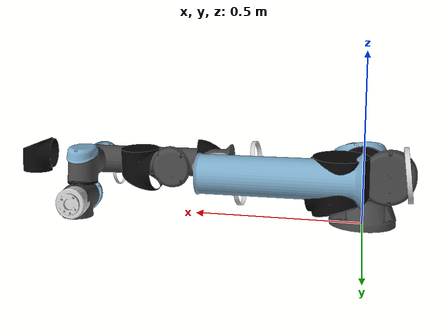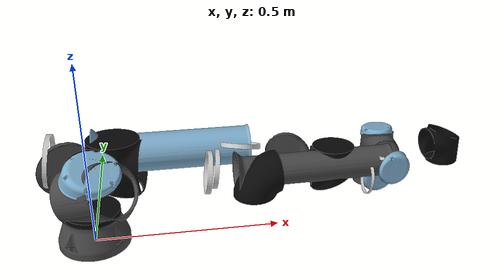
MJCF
<?xml version="1.0" ?>
<mujoco model="ur5e">
	<compiler meshdir="ur5e/meshes" texturedir="ur5e/textures" angle="radian" autolimits="true" balanceinertia="true" boundmass="0.000001" boundinertia="0.000001"/>
	<default>
		<default class="visual">
			<geom contype="0" conaffinity="0"/>
		</default>
		<default class="collision">
			<geom rgba="1.0 0.0 0.0 0.0"/>
		</default>
	</default>
	<asset>
		<mesh name="base_0" file="stl/base_0.stl" scale="1.0 1.0 1.0"/>
		<mesh name="base_1" file="stl/base_1.stl" scale="1.0 1.0 1.0"/>
		<mesh name="shoulder_0" file="stl/shoulder_0.stl" scale="1.0 1.0 1.0"/>
		<mesh name="shoulder_1" file="stl/shoulder_1.stl" scale="1.0 1.0 1.0"/>
		<mesh name="shoulder_2" file="stl/shoulder_2.stl" scale="1.0 1.0 1.0"/>
		<mesh name="upperarm_0" file="stl/upperarm_0.stl" scale="1.0 1.0 1.0"/>
		<mesh name="upperarm_1" file="stl/upperarm_1.stl" scale="1.0 1.0 1.0"/>
		<mesh name="upperarm_2" file="stl/upperarm_2.stl" scale="1.0 1.0 1.0"/>
		<mesh name="upperarm_3" file="stl/upperarm_3.stl" scale="1.0 1.0 1.0"/>
		<mesh name="forearm_0" file="stl/forearm_0.stl" scale="1.0 1.0 1.0"/>
		<mesh name="forearm_1" file="stl/forearm_1.stl" scale="1.0 1.0 1.0"/>
		<mesh name="forearm_2" file="stl/forearm_2.stl" scale="1.0 1.0 1.0"/>
		<mesh name="forearm_3" file="stl/forearm_3.stl" scale="1.0 1.0 1.0"/>
		<mesh name="wrist1_0" file="stl/wrist1_0.stl" scale="1.0 1.0 1.0"/>
		<mesh name="wrist1_1" file="stl/wrist1_1.stl" scale="1.0 1.0 1.0"/>
		<mesh name="wrist1_2" file="stl/wrist1_2.stl" scale="1.0 1.0 1.0"/>
		<mesh name="wrist2_0" file="stl/wrist2_0.stl" scale="1.0 1.0 1.0"/>
		<mesh name="wrist2_1" file="stl/wrist2_1.stl" scale="1.0 1.0 1.0"/>
		<mesh name="wrist2_2" file="stl/wrist2_2.stl" scale="1.0 1.0 1.0"/>
		<mesh name="wrist3" file="stl/wrist3.stl" scale="1.0 1.0 1.0"/>
		<material name="black" rgba="0.032999999821186066 0.032999999821186066 0.032999999821186066 1.0" emission="0.0" specular="0.5"/>
		<material name="jointgray" rgba="0.27799999713897705 0.27799999713897705 0.27799999713897705 1.0" emission="0.0" specular="0.5"/>
		<material name="urblue" rgba="0.49000000953674316 0.6779999732971191 0.800000011920929 1.0" emission="0.0" specular="0.5"/>
		<material name="linkgray" rgba="0.8199999928474426 0.8199999928474426 0.8199999928474426 1.0" emission="0.0" specular="0.5"/>
	</asset>
	<worldbody>
		<body name="ur5e" pos="0.0 0.0 0.0" quat="1.0 0.0 0.0 0.0">
			<body name="base" pos="0.0 0.0 0.0" quat="1.0 0.0 0.0 0.0">
				<geom name="Geom_0" type="mesh" pos="6.729613346578844e-07 -3.6582437701326853e-07 0.09357351809740067" quat="0.4247327148914337 0.5653289556503296 -0.424738347530365 0.5653340816497803" mesh="base_0" material="black" class="visual"/>
				<geom name="Geom_1" type="mesh" pos="1.5050970603169844e-07 5.029438057135849e-07 0.031134091317653656" quat="-0.22746089100837708 0.6695270538330078 0.22744594514369965 0.6695247292518616" mesh="base_1" material="jointgray" class="visual"/>
				<body name="shoulder_link" pos="0.0 0.0 0.16300000250339508" quat="1.0 0.0 0.0 0.0">
					<inertial mass="3.700000047683716" pos="0.0 0.0 0.0" quat="1.0 0.0 0.0 0.0" diaginertia="0.010267499834299088 0.010267499834299088 0.006659999955445528"/>
					<geom name="Geom_2" type="mesh" pos="0.00015791990153957158 -0.008422926999628544 0.04825544357299805" quat="0.4574122130870819 0.5398884415626526 -0.6069855690002441 0.3617499768733978" mesh="shoulder_0" material="urblue" class="visual"/>
					<geom name="Geom_3" type="mesh" pos="1.022160290631291e-06 0.06888462603092194 -0.0005032847984693944" quat="0.7045508027076721 0.06002740561962128 0.06001698970794678 0.7045586109161377" mesh="shoulder_1" material="black" class="visual"/>
					<geom name="Geom_4" type="mesh" pos="-4.987111606169492e-05 0.0005636150017380714 -0.018757717683911324" quat="0.6390854120254517 0.3009769022464752 0.6553342938423157 0.2674317955970764" mesh="shoulder_2" material="jointgray" class="visual"/>
					<geom name="Geom_5" type="capsule" pos="0.0 0.0 -0.03999999910593033" quat="1.0 0.0 0.0 0.0" size="0.05999999865889549 0.05999999865889549 0.0" class="collision"/>
					<joint name="shoulder_pan_joint" type="hinge" pos="0.0 0.0 0.0" range="-6.28318977355957 6.28318977355957" axis="0.0 0.0 1.0"/>
					<body name="upper_arm_link" pos="0.0 0.1379999965429306 0.0" quat="0.7071067690849304 0.0 0.7071067690849304 0.0">
						<inertial mass="8.392999649047852" pos="0.0 0.0 0.21250000596046448" quat="1.0 0.0 0.0 0.0" diaginertia="0.13388599455356598 0.13388599455356598 0.01510739978402853"/>
						<geom name="Geom_6" type="mesh" pos="-3.57606450052117e-06 -0.00019999968935735524 0.2121351808309555" quat="0.984277606010437 -0.00016280471754726022 2.8460901376092806e-05 -0.17662817239761353" mesh="upperarm_0" material="linkgray" class="visual"/>
						<geom name="Geom_7" type="mesh" pos="-7.533427037742513e-07 -0.02455902472138405 0.2981274724006653" quat="0.9960792660713196 0.08846508711576462 1.8374092178419232e-05 -0.0002435949572827667" mesh="upperarm_1" material="black" class="visual"/>
						<geom name="Geom_8" type="mesh" pos="1.2475194125727285e-05 -0.020613765344023705 0.21354779601097107" quat="0.7064585089683533 0.003309983527287841 -0.00333422445692122 0.7077388167381287" mesh="upperarm_2" material="jointgray" class="visual"/>
						<geom name="Geom_9" type="mesh" pos="-1.6738860722398385e-05 0.04530972242355347 0.21224045753479004" quat="0.7069376111030579 0.00011442576214903966 -0.00012226779654156417 0.7072758674621582" mesh="upperarm_3" material="urblue" class="visual"/>
						<geom name="Geom_10" type="capsule" pos="0.0 -0.03999999910593033 0.0" quat="0.7071067690849304 0.7071067690849304 0.0 0.0" size="0.05999999865889549 0.05999999865889549 0.0" class="collision"/>
						<geom name="Geom_11" type="capsule" pos="0.0 0.0 0.20000000298023224" quat="1.0 0.0 0.0 0.0" size="0.05000000074505806 0.20000000298023224 0.0" class="collision"/>
						<joint name="shoulder_lift_joint" type="hinge" pos="0.0 0.0 0.0" range="-6.28318977355957 6.28318977355957" axis="0.0 1.0 0.0"/>
						<body name="forearm_link" pos="0.0 -0.13099999725818634 0.42500001192092896" quat="1.0 0.0 0.0 0.0">
							<inertial mass="2.2750000953674316" pos="0.0 0.0 0.19599999487400055" quat="1.0 0.0 0.0 0.0" diaginertia="0.031179599463939667 0.031179599463939667 0.004095000214874744"/>
							<geom name="Geom_12" type="mesh" pos="2.620744999148883e-05 -0.0398692786693573 0.39588937163352966" quat="0.7046946287155151 -0.05718502774834633 0.16114428639411926 0.6885984539985657" mesh="forearm_0" material="urblue" class="visual"/>
							<geom name="Geom_13" type="mesh" pos="-2.3636832338524982e-05 -0.000434091140050441 0.20434308052062988" quat="0.7858982086181641 0.0003024959296453744 -0.00011293544230284169 0.6183558106422424" mesh="forearm_1" material="linkgray" class="visual"/>
							<geom name="Geom_14" type="mesh" pos="-9.661516742198728e-06 0.016976509243249893 0.2550390362739563" quat="0.9973225593566895 -0.07308616489171982 0.00014625515905208886 0.0024774419143795967" mesh="forearm_2" material="black" class="visual"/>
							<geom name="Geom_15" type="mesh" pos="2.975203187816078e-06 0.011960668489336967 0.1636168211698532" quat="0.7067975997924805 -0.007178143598139286 0.0071936603635549545 0.707342803478241" mesh="forearm_3" material="jointgray" class="visual"/>
							<geom name="Geom_16" type="capsule" pos="0.0 0.07999999821186066 0.0" quat="0.7071067690849304 0.7071067690849304 0.0 0.0" size="0.054999999701976776 0.05999999865889549 0.0" class="collision"/>
							<geom name="Geom_17" type="capsule" pos="0.0 0.0 0.20000000298023224" quat="1.0 0.0 0.0 0.0" size="0.03799999877810478 0.1899999976158142 0.0" class="collision"/>
							<joint name="elbow_joint" type="hinge" pos="0.0 0.0 0.0" range="-3.1414999961853027 3.1414999961853027" axis="0.0 1.0 0.0"/>
							<body name="wrist_1_link" pos="0.0 0.0 0.3919999897480011" quat="0.7071067690849304 0.0 0.7071067690849304 0.0">
								<inertial mass="1.218999981880188" pos="0.0 0.12700000405311584 0.0" quat="1.0 0.0 0.0 0.0" diaginertia="0.002559900050982833 0.002559900050982833 0.0021941999439150095"/>
								<geom name="Geom_18" type="mesh" pos="-2.324781598872505e-05 0.1262851357460022 0.048975057899951935" quat="-0.14090557396411896 0.6929780840873718 0.14077793061733246 0.692898690700531" mesh="wrist1_0" material="black" class="visual"/>
								<geom name="Geom_19" type="mesh" pos="-3.664461473817937e-05 0.13040179014205933 -0.03970348834991455" quat="0.39477959275245667 0.5868229269981384 -0.5545021295547485 0.4385376572608948" mesh="wrist1_1" material="urblue" class="visual"/>
								<geom name="Geom_20" type="mesh" pos="-2.099102403008146e-06 0.11289621889591217 0.012388333678245544" quat="0.3482385575771332 0.6150895953178406 -0.615513026714325 0.348623663187027" mesh="wrist1_2" material="jointgray" class="visual"/>
								<geom name="Geom_21" type="capsule" pos="0.0 0.05000000074505806 0.0" quat="0.7071067690849304 0.7071067690849304 0.0 0.0" size="0.03999999910593033 0.07000000029802322 0.0" class="collision"/>
								<joint name="wrist_1_joint" type="hinge" pos="0.0 0.0 0.0" range="-6.28318977355957 6.28318977355957" axis="0.0 1.0 0.0"/>
								<body name="wrist_2_link" pos="0.0 0.12700000405311584 0.0" quat="1.0 0.0 0.0 0.0">
									<inertial mass="1.218999981880188" pos="0.0 0.0 0.10000000149011612" quat="1.0 0.0 0.0 0.0" diaginertia="0.002559900050982833 0.002559900050982833 0.0021941999439150095"/>
									<geom name="Geom_22" type="mesh" pos="-3.8001244320184924e-06 0.04853645712137222 0.09943580627441406" quat="0.7043315172195435 0.06266733258962631 0.06266747415065765 0.7043171525001526" mesh="wrist2_0" material="black" class="visual"/>
									<geom name="Geom_23" type="mesh" pos="3.1696421501692384e-05 -0.04020605608820915 0.1035911962389946" quat="0.7035030126571655 -0.0700230523943901 0.1476086527109146 0.6916588544845581" mesh="wrist2_1" material="urblue" class="visual"/>
									<geom name="Geom_24" type="mesh" pos="9.00023621852597e-07 0.01605665497481823 0.09663180261850357" quat="0.276137113571167 0.6509364247322083 -0.6508583426475525 0.2764299809932709" mesh="wrist2_2" material="jointgray" class="visual"/>
									<geom name="Geom_25" type="capsule" pos="0.0 0.0 0.03999999910593033" quat="1.0 0.0 0.0 0.0" size="0.03999999910593033 0.05999999865889549 0.0" class="collision"/>
									<geom name="Geom_26" type="capsule" pos="0.0 0.019999999552965164 0.10000000149011612" quat="0.7071067690849304 0.7071067690849304 0.0 0.0" size="0.03999999910593033 0.03999999910593033 0.0" class="collision"/>
									<joint name="wrist_2_joint" type="hinge" pos="0.0 0.0 0.0" range="-6.28318977355957 6.28318977355957" axis="0.0 0.0 1.0"/>
									<body name="wrist_3_link" pos="0.0 0.0 0.10000000149011612" quat="1.0 0.0 0.0 0.0">
										<inertial mass="0.18889999389648438" pos="0.0 0.0771683007478714 0.0" quat="0.7071067690849304 0.0 0.0 0.7071067690849304" diaginertia="0.0001321339950663969 9.908629726851359e-05 9.908629726851359e-05"/>
										<geom name="Geom_27" type="mesh" pos="1.3730400496569928e-05 0.07930911332368851 -0.0005378685309551656" quat="0.7029555439949036 0.07806526124477386 0.08144403249025345 0.7022294402122498" mesh="wrist3" material="linkgray" class="visual"/>
										<geom name="Geom_28" type="cylinder" pos="0.0 0.07999999821186066 0.0" quat="0.7071067690849304 0.7071067690849304 0.0 0.0" size="0.03999999910593033 0.019999999552965164 0.0" class="collision"/>
										<joint name="wrist_3_joint" type="hinge" pos="0.0 0.0 0.0" range="-6.28318977355957 6.28318977355957" axis="0.0 1.0 0.0"/>
									</body>
								</body>
							</body>
						</body>
					</body>
				</body>
			</body>
		</body>
	</worldbody>
	<equality/>
</mujoco>
